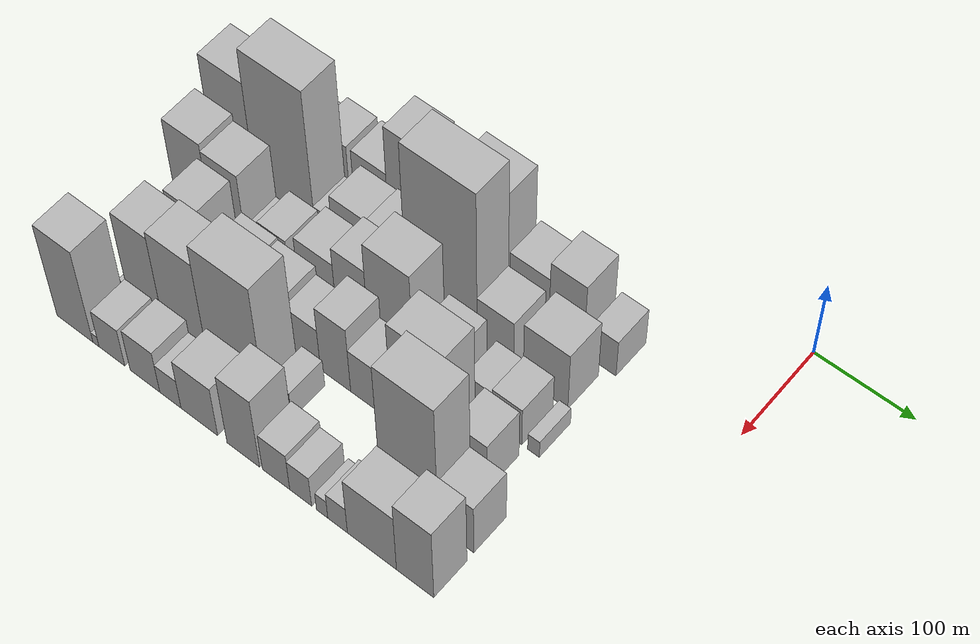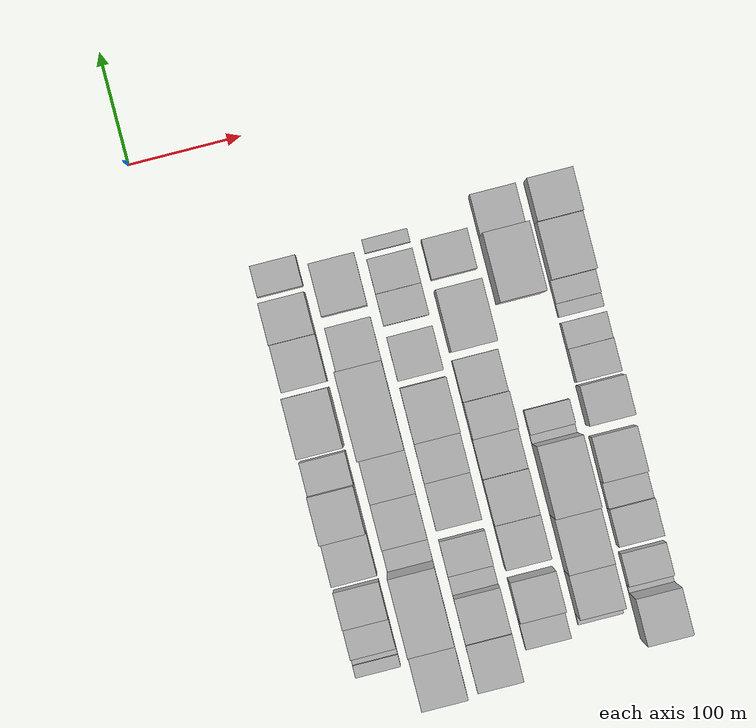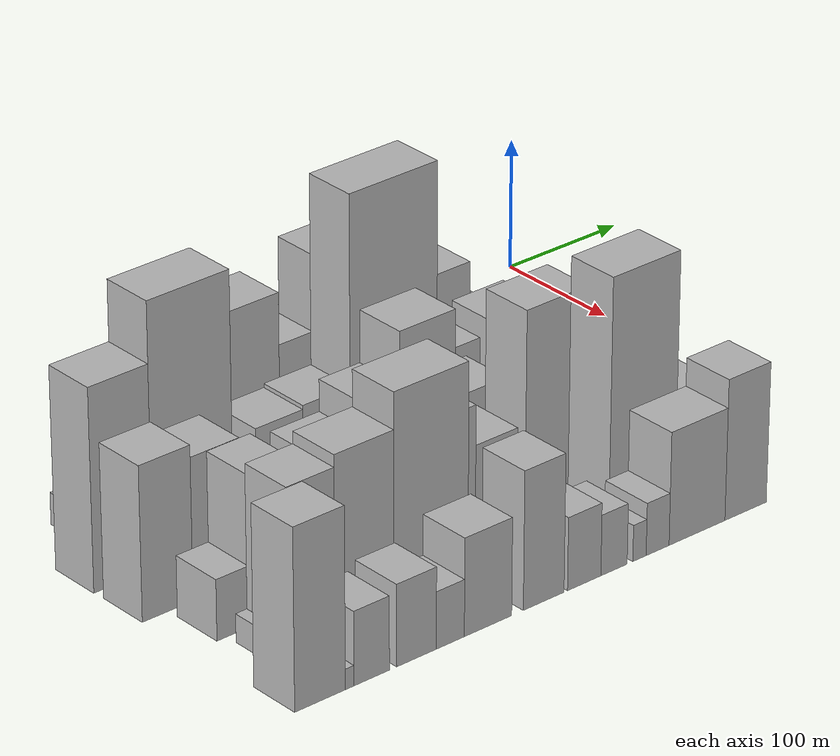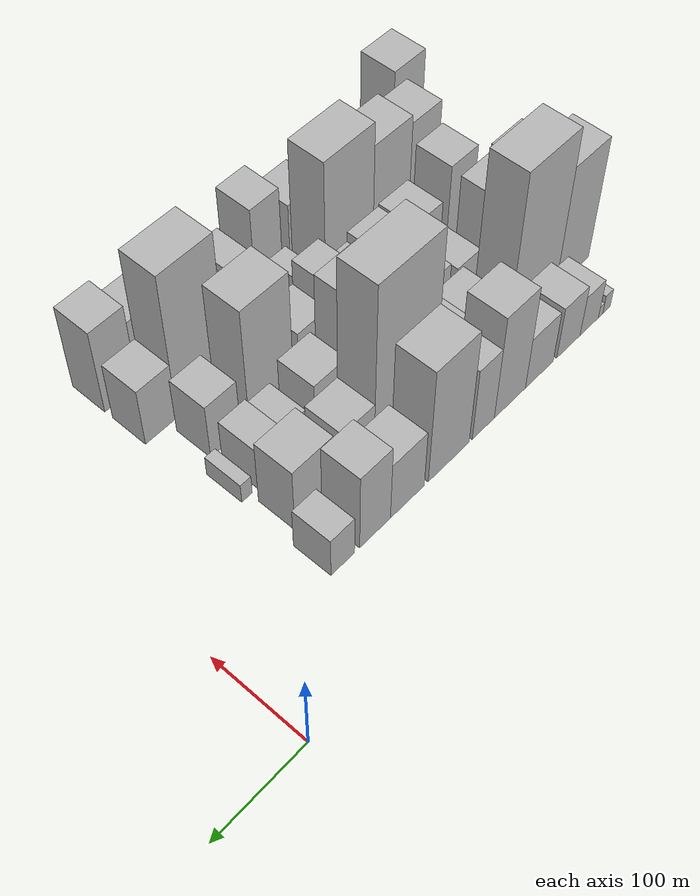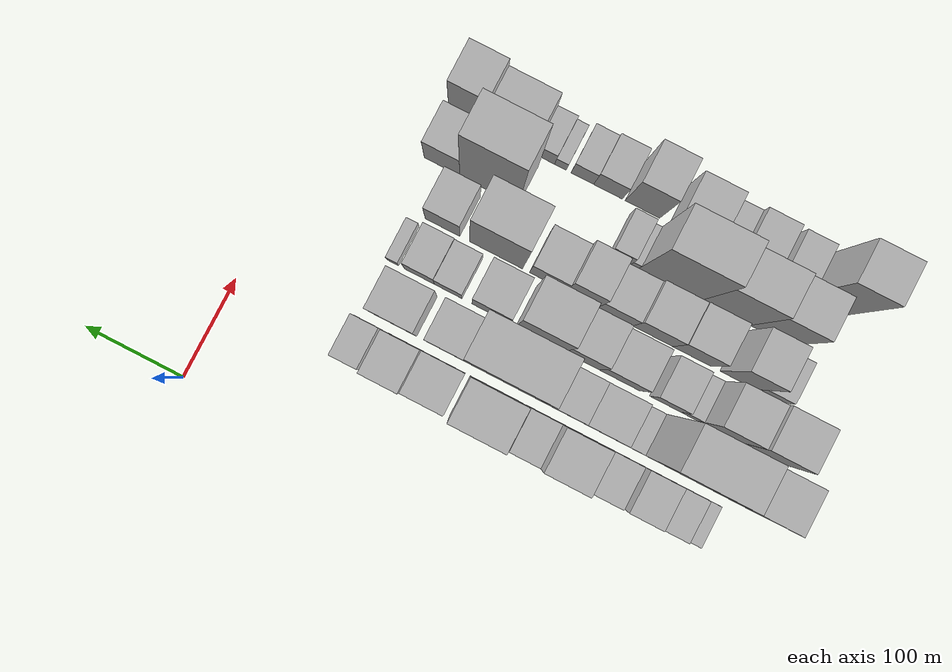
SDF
<sdf version="1.6">
 <world name="default">
  <model name="building_11">
   <static>1</static>
   <pose>100.0000 -469.0723 0 0.000000 0.000000 0.000000</pose>
   <link name="link">
    <pose>0 0 12.00 0 0 0</pose>
    <collision name="collision"><geometry><box><size>40.0000 10.9267 24.0000</size></box></geometry></collision>
    <visual name="visual">
     <cast_shadows>0</cast_shadows>
     <geometry><box><size>40.0000 10.9267 24.0000</size></box></geometry>
     <material>
      <script>
       <uri>model://HANNAS_wall/materials/scripts</uri>
       <uri>model://HANNAS_wall/materials/textures</uri>
       <name>vrc/HANNAS_wall</name>
      </script>
     </material>
    </visual>
   </link>
  </model>
  <model name="building_12">
   <static>1</static>
   <pose>100.0000 -460.4415 0 0.000000 0.000000 0.000000</pose>
   <link name="link">
    <pose>0 0 7.50 0 0 0</pose>
    <collision name="collision"><geometry><box><size>40.0000 6.3347 15.0000</size></box></geometry></collision>
    <visual name="visual">
     <cast_shadows>0</cast_shadows>
     <geometry><box><size>40.0000 6.3347 15.0000</size></box></geometry>
     <material>
      <script>
       <uri>model://HANNAS_wall/materials/scripts</uri>
       <uri>model://HANNAS_wall/materials/textures</uri>
       <name>vrc/HANNAS_wall</name>
      </script>
     </material>
    </visual>
   </link>
  </model>
  <model name="building_13">
   <static>1</static>
   <pose>100.0000 -443.9458 0 0.000000 0.000000 0.000000</pose>
   <link name="link">
    <pose>0 0 25.50 0 0 0</pose>
    <collision name="collision"><geometry><box><size>40.0000 26.6568 51.0000</size></box></geometry></collision>
    <visual name="visual">
     <cast_shadows>0</cast_shadows>
     <geometry><box><size>40.0000 26.6568 51.0000</size></box></geometry>
     <material>
      <script>
       <uri>model://HANNAS_wall/materials/scripts</uri>
       <uri>model://HANNAS_wall/materials/textures</uri>
       <name>vrc/HANNAS_wall</name>
      </script>
     </material>
    </visual>
   </link>
  </model>
  <model name="building_14">
   <static>1</static>
   <pose>100.0000 -414.1165 0 0.000000 0.000000 0.000000</pose>
   <link name="link">
    <pose>0 0 33.00 0 0 0</pose>
    <collision name="collision"><geometry><box><size>40.0000 33.0019 66.0000</size></box></geometry></collision>
    <visual name="visual">
     <cast_shadows>0</cast_shadows>
     <geometry><box><size>40.0000 33.0019 66.0000</size></box></geometry>
     <material>
      <script>
       <uri>model://HANNAS_wall/materials/scripts</uri>
       <uri>model://HANNAS_wall/materials/textures</uri>
       <name>vrc/HANNAS_wall</name>
      </script>
     </material>
    </visual>
   </link>
  </model>
  <model name="building_15">
   <static>1</static>
   <pose>100.0000 -373.3986 0 0.000000 0.000000 0.000000</pose>
   <link name="link">
    <pose>0 0 33.00 0 0 0</pose>
    <collision name="collision"><geometry><box><size>40.0000 38.4339 66.0000</size></box></geometry></collision>
    <visual name="visual">
     <cast_shadows>0</cast_shadows>
     <geometry><box><size>40.0000 38.4339 66.0000</size></box></geometry>
     <material>
      <script>
       <uri>model://HANNAS_wall/materials/scripts</uri>
       <uri>model://HANNAS_wall/materials/textures</uri>
       <name>vrc/HANNAS_wall</name>
      </script>
     </material>
    </visual>
   </link>
  </model>
  <model name="building_16">
   <static>1</static>
   <pose>100.0000 -333.3017 0 0.000000 0.000000 0.000000</pose>
   <link name="link">
    <pose>0 0 66.00 0 0 0</pose>
    <collision name="collision"><geometry><box><size>40.0000 41.7599 132.0000</size></box></geometry></collision>
    <visual name="visual">
     <cast_shadows>0</cast_shadows>
     <geometry><box><size>40.0000 41.7599 132.0000</size></box></geometry>
     <material>
      <script>
       <uri>model://HANNAS_wall/materials/scripts</uri>
       <uri>model://HANNAS_wall/materials/textures</uri>
       <name>vrc/HANNAS_wall</name>
      </script>
     </material>
    </visual>
   </link>
  </model>
  <model name="building_17">
   <static>1</static>
   <pose>100.0000 -297.9540 0 0.000000 0.000000 0.000000</pose>
   <link name="link">
    <pose>0 0 46.50 0 0 0</pose>
    <collision name="collision"><geometry><box><size>40.0000 28.9357 93.0000</size></box></geometry></collision>
    <visual name="visual">
     <cast_shadows>0</cast_shadows>
     <geometry><box><size>40.0000 28.9357 93.0000</size></box></geometry>
     <material>
      <script>
       <uri>model://HANNAS_wall/materials/scripts</uri>
       <uri>model://HANNAS_wall/materials/textures</uri>
       <name>vrc/HANNAS_wall</name>
      </script>
     </material>
    </visual>
   </link>
  </model>
  <model name="building_18">
   <static>1</static>
   <pose>100.0000 -253.5364 0 0.000000 0.000000 0.000000</pose>
   <link name="link">
    <pose>0 0 73.50 0 0 0</pose>
    <collision name="collision"><geometry><box><size>40.0000 51.8995 147.0000</size></box></geometry></collision>
    <visual name="visual">
     <cast_shadows>0</cast_shadows>
     <geometry><box><size>40.0000 51.8995 147.0000</size></box></geometry>
     <material>
      <script>
       <uri>model://HANNAS_wall/materials/scripts</uri>
       <uri>model://HANNAS_wall/materials/textures</uri>
       <name>vrc/HANNAS_wall</name>
      </script>
     </material>
    </visual>
   </link>
  </model>
  <model name="building_19">
   <static>1</static>
   <pose>100.0000 -201.8967 0 0.000000 0.000000 0.000000</pose>
   <link name="link">
    <pose>0 0 37.50 0 0 0</pose>
    <collision name="collision"><geometry><box><size>40.0000 41.3797 75.0000</size></box></geometry></collision>
    <visual name="visual">
     <cast_shadows>0</cast_shadows>
     <geometry><box><size>40.0000 41.3797 75.0000</size></box></geometry>
     <material>
      <script>
       <uri>model://HANNAS_wall/materials/scripts</uri>
       <uri>model://HANNAS_wall/materials/textures</uri>
       <name>vrc/HANNAS_wall</name>
      </script>
     </material>
    </visual>
   </link>
  </model>
  <model name="building_20">
   <static>1</static>
   <pose>100.0000 -162.9581 0 0.000000 0.000000 0.000000</pose>
   <link name="link">
    <pose>0 0 49.50 0 0 0</pose>
    <collision name="collision"><geometry><box><size>40.0000 36.4976 99.0000</size></box></geometry></collision>
    <visual name="visual">
     <cast_shadows>0</cast_shadows>
     <geometry><box><size>40.0000 36.4976 99.0000</size></box></geometry>
     <material>
      <script>
       <uri>model://HANNAS_wall/materials/scripts</uri>
       <uri>model://HANNAS_wall/materials/textures</uri>
       <name>vrc/HANNAS_wall</name>
      </script>
     </material>
    </visual>
   </link>
  </model>
  <model name="building_21">
   <static>1</static>
   <pose>100.0000 -125.1048 0 0.000000 0.000000 0.000000</pose>
   <link name="link">
    <pose>0 0 25.50 0 0 0</pose>
    <collision name="collision"><geometry><box><size>40.0000 27.2089 51.0000</size></box></geometry></collision>
    <visual name="visual">
     <cast_shadows>0</cast_shadows>
     <geometry><box><size>40.0000 27.2089 51.0000</size></box></geometry>
     <material>
      <script>
       <uri>model://HANNAS_wall/materials/scripts</uri>
       <uri>model://HANNAS_wall/materials/textures</uri>
       <name>vrc/HANNAS_wall</name>
      </script>
     </material>
    </visual>
   </link>
  </model>
  <model name="building_56">
   <static>1</static>
   <pose>149.0000 -484.1078 0 0.000000 0.000000 0.000000</pose>
   <link name="link">
    <pose>0 0 75.00 0 0 0</pose>
    <collision name="collision"><geometry><box><size>40.0000 48.3169 150.0000</size></box></geometry></collision>
    <visual name="visual">
     <cast_shadows>0</cast_shadows>
     <geometry><box><size>40.0000 48.3169 150.0000</size></box></geometry>
     <material>
      <script>
       <uri>model://HANNAS_wall/materials/scripts</uri>
       <uri>model://HANNAS_wall/materials/textures</uri>
       <name>vrc/HANNAS_wall</name>
      </script>
     </material>
    </visual>
   </link>
  </model>
  <model name="building_57">
   <static>1</static>
   <pose>149.0000 -426.3422 0 0.000000 0.000000 0.000000</pose>
   <link name="link">
    <pose>0 0 97.50 0 0 0</pose>
    <collision name="collision"><geometry><box><size>40.0000 67.2142 195.0000</size></box></geometry></collision>
    <visual name="visual">
     <cast_shadows>0</cast_shadows>
     <geometry><box><size>40.0000 67.2142 195.0000</size></box></geometry>
     <material>
      <script>
       <uri>model://HANNAS_wall/materials/scripts</uri>
       <uri>model://HANNAS_wall/materials/textures</uri>
       <name>vrc/HANNAS_wall</name>
      </script>
     </material>
    </visual>
   </link>
  </model>
  <model name="building_58">
   <static>1</static>
   <pose>149.0000 -382.9009 0 0.000000 0.000000 0.000000</pose>
   <link name="link">
    <pose>0 0 19.50 0 0 0</pose>
    <collision name="collision"><geometry><box><size>40.0000 19.6684 39.0000</size></box></geometry></collision>
    <visual name="visual">
     <cast_shadows>0</cast_shadows>
     <geometry><box><size>40.0000 19.6684 39.0000</size></box></geometry>
     <material>
      <script>
       <uri>model://HANNAS_wall/materials/scripts</uri>
       <uri>model://HANNAS_wall/materials/textures</uri>
       <name>vrc/HANNAS_wall</name>
      </script>
     </material>
    </visual>
   </link>
  </model>
  <model name="building_59">
   <static>1</static>
   <pose>149.0000 -353.0144 0 0.000000 0.000000 0.000000</pose>
   <link name="link">
    <pose>0 0 36.00 0 0 0</pose>
    <collision name="collision"><geometry><box><size>40.0000 40.1046 72.0000</size></box></geometry></collision>
    <visual name="visual">
     <cast_shadows>0</cast_shadows>
     <geometry><box><size>40.0000 40.1046 72.0000</size></box></geometry>
     <material>
      <script>
       <uri>model://HANNAS_wall/materials/scripts</uri>
       <uri>model://HANNAS_wall/materials/textures</uri>
       <name>vrc/HANNAS_wall</name>
      </script>
     </material>
    </visual>
   </link>
  </model>
  <model name="building_60">
   <static>1</static>
   <pose>149.0000 -312.7561 0 0.000000 0.000000 0.000000</pose>
   <link name="link">
    <pose>0 0 37.50 0 0 0</pose>
    <collision name="collision"><geometry><box><size>40.0000 40.4119 75.0000</size></box></geometry></collision>
    <visual name="visual">
     <cast_shadows>0</cast_shadows>
     <geometry><box><size>40.0000 40.4119 75.0000</size></box></geometry>
     <material>
      <script>
       <uri>model://HANNAS_wall/materials/scripts</uri>
       <uri>model://HANNAS_wall/materials/textures</uri>
       <name>vrc/HANNAS_wall</name>
      </script>
     </material>
    </visual>
   </link>
  </model>
  <model name="building_61">
   <static>1</static>
   <pose>149.0000 -254.6634 0 0.000000 0.000000 0.000000</pose>
   <link name="link">
    <pose>0 0 108.00 0 0 0</pose>
    <collision name="collision"><geometry><box><size>40.0000 75.7735 216.0000</size></box></geometry></collision>
    <visual name="visual">
     <cast_shadows>0</cast_shadows>
     <geometry><box><size>40.0000 75.7735 216.0000</size></box></geometry>
     <material>
      <script>
       <uri>model://HANNAS_wall/materials/scripts</uri>
       <uri>model://HANNAS_wall/materials/textures</uri>
       <name>vrc/HANNAS_wall</name>
      </script>
     </material>
    </visual>
   </link>
  </model>
  <model name="building_62">
   <static>1</static>
   <pose>149.0000 -197.6949 0 0.000000 0.000000 0.000000</pose>
   <link name="link">
    <pose>0 0 36.00 0 0 0</pose>
    <collision name="collision"><geometry><box><size>40.0000 38.1637 72.0000</size></box></geometry></collision>
    <visual name="visual">
     <cast_shadows>0</cast_shadows>
     <geometry><box><size>40.0000 38.1637 72.0000</size></box></geometry>
     <material>
      <script>
       <uri>model://HANNAS_wall/materials/scripts</uri>
       <uri>model://HANNAS_wall/materials/textures</uri>
       <name>vrc/HANNAS_wall</name>
      </script>
     </material>
    </visual>
   </link>
  </model>
  <model name="building_63">
   <static>1</static>
   <pose>149.0000 -145.5985 0 0.000000 0.000000 0.000000</pose>
   <link name="link">
    <pose>0 0 40.50 0 0 0</pose>
    <collision name="collision"><geometry><box><size>40.0000 46.0290 81.0000</size></box></geometry></collision>
    <visual name="visual">
     <cast_shadows>0</cast_shadows>
     <geometry><box><size>40.0000 46.0290 81.0000</size></box></geometry>
     <material>
      <script>
       <uri>model://HANNAS_wall/materials/scripts</uri>
       <uri>model://HANNAS_wall/materials/textures</uri>
       <name>vrc/HANNAS_wall</name>
      </script>
     </material>
    </visual>
   </link>
  </model>
  <model name="building_101">
   <static>1</static>
   <pose>198.0000 -486.6986 0 0.000000 0.000000 0.000000</pose>
   <link name="link">
    <pose>0 0 57.00 0 0 0</pose>
    <collision name="collision"><geometry><box><size>40.0000 41.4013 114.0000</size></box></geometry></collision>
    <visual name="visual">
     <cast_shadows>0</cast_shadows>
     <geometry><box><size>40.0000 41.4013 114.0000</size></box></geometry>
     <material>
      <script>
       <uri>model://HANNAS_wall/materials/scripts</uri>
       <uri>model://HANNAS_wall/materials/textures</uri>
       <name>vrc/HANNAS_wall</name>
      </script>
     </material>
    </visual>
   </link>
  </model>
  <model name="building_102">
   <static>1</static>
   <pose>198.0000 -446.1177 0 0.000000 0.000000 0.000000</pose>
   <link name="link">
    <pose>0 0 52.50 0 0 0</pose>
    <collision name="collision"><geometry><box><size>40.0000 39.7604 105.0000</size></box></geometry></collision>
    <visual name="visual">
     <cast_shadows>0</cast_shadows>
     <geometry><box><size>40.0000 39.7604 105.0000</size></box></geometry>
     <material>
      <script>
       <uri>model://HANNAS_wall/materials/scripts</uri>
       <uri>model://HANNAS_wall/materials/textures</uri>
       <name>vrc/HANNAS_wall</name>
      </script>
     </material>
    </visual>
   </link>
  </model>
  <model name="building_103">
   <static>1</static>
   <pose>198.0000 -417.6878 0 0.000000 0.000000 0.000000</pose>
   <link name="link">
    <pose>0 0 16.50 0 0 0</pose>
    <collision name="collision"><geometry><box><size>40.0000 17.0996 33.0000</size></box></geometry></collision>
    <visual name="visual">
     <cast_shadows>0</cast_shadows>
     <geometry><box><size>40.0000 17.0996 33.0000</size></box></geometry>
     <material>
      <script>
       <uri>model://HANNAS_wall/materials/scripts</uri>
       <uri>model://HANNAS_wall/materials/textures</uri>
       <name>vrc/HANNAS_wall</name>
      </script>
     </material>
    </visual>
   </link>
  </model>
  <model name="building_104">
   <static>1</static>
   <pose>198.0000 -393.6703 0 0.000000 0.000000 0.000000</pose>
   <link name="link">
    <pose>0 0 28.50 0 0 0</pose>
    <collision name="collision"><geometry><box><size>40.0000 30.9355 57.0000</size></box></geometry></collision>
    <visual name="visual">
     <cast_shadows>0</cast_shadows>
     <geometry><box><size>40.0000 30.9355 57.0000</size></box></geometry>
     <material>
      <script>
       <uri>model://HANNAS_wall/materials/scripts</uri>
       <uri>model://HANNAS_wall/materials/textures</uri>
       <name>vrc/HANNAS_wall</name>
      </script>
     </material>
    </visual>
   </link>
  </model>
  <model name="building_105">
   <static>1</static>
   <pose>198.0000 -347.3760 0 0.000000 0.000000 0.000000</pose>
   <link name="link">
    <pose>0 0 36.00 0 0 0</pose>
    <collision name="collision"><geometry><box><size>40.0000 41.6529 72.0000</size></box></geometry></collision>
    <visual name="visual">
     <cast_shadows>0</cast_shadows>
     <geometry><box><size>40.0000 41.6529 72.0000</size></box></geometry>
     <material>
      <script>
       <uri>model://HANNAS_wall/materials/scripts</uri>
       <uri>model://HANNAS_wall/materials/textures</uri>
       <name>vrc/HANNAS_wall</name>
      </script>
     </material>
    </visual>
   </link>
  </model>
  <model name="building_106">
   <static>1</static>
   <pose>198.0000 -309.0559 0 0.000000 0.000000 0.000000</pose>
   <link name="link">
    <pose>0 0 48.00 0 0 0</pose>
    <collision name="collision"><geometry><box><size>40.0000 34.9874 96.0000</size></box></geometry></collision>
    <visual name="visual">
     <cast_shadows>0</cast_shadows>
     <geometry><box><size>40.0000 34.9874 96.0000</size></box></geometry>
     <material>
      <script>
       <uri>model://HANNAS_wall/materials/scripts</uri>
       <uri>model://HANNAS_wall/materials/textures</uri>
       <name>vrc/HANNAS_wall</name>
      </script>
     </material>
    </visual>
   </link>
  </model>
  <model name="building_107">
   <static>1</static>
   <pose>198.0000 -267.5421 0 0.000000 0.000000 0.000000</pose>
   <link name="link">
    <pose>0 0 67.50 0 0 0</pose>
    <collision name="collision"><geometry><box><size>40.0000 48.0401 135.0000</size></box></geometry></collision>
    <visual name="visual">
     <cast_shadows>0</cast_shadows>
     <geometry><box><size>40.0000 48.0401 135.0000</size></box></geometry>
     <material>
      <script>
       <uri>model://HANNAS_wall/materials/scripts</uri>
       <uri>model://HANNAS_wall/materials/textures</uri>
       <name>vrc/HANNAS_wall</name>
      </script>
     </material>
    </visual>
   </link>
  </model>
  <model name="building_108">
   <static>1</static>
   <pose>198.0000 -218.2812 0 0.000000 0.000000 0.000000</pose>
   <link name="link">
    <pose>0 0 34.50 0 0 0</pose>
    <collision name="collision"><geometry><box><size>40.0000 38.4817 69.0000</size></box></geometry></collision>
    <visual name="visual">
     <cast_shadows>0</cast_shadows>
     <geometry><box><size>40.0000 38.4817 69.0000</size></box></geometry>
     <material>
      <script>
       <uri>model://HANNAS_wall/materials/scripts</uri>
       <uri>model://HANNAS_wall/materials/textures</uri>
       <name>vrc/HANNAS_wall</name>
      </script>
     </material>
    </visual>
   </link>
  </model>
  <model name="building_109">
   <static>1</static>
   <pose>198.0000 -175.1202 0 0.000000 0.000000 0.000000</pose>
   <link name="link">
    <pose>0 0 24.00 0 0 0</pose>
    <collision name="collision"><geometry><box><size>40.0000 27.8404 48.0000</size></box></geometry></collision>
    <visual name="visual">
     <cast_shadows>0</cast_shadows>
     <geometry><box><size>40.0000 27.8404 48.0000</size></box></geometry>
     <material>
      <script>
       <uri>model://HANNAS_wall/materials/scripts</uri>
       <uri>model://HANNAS_wall/materials/textures</uri>
       <name>vrc/HANNAS_wall</name>
      </script>
     </material>
    </visual>
   </link>
  </model>
  <model name="building_110">
   <static>1</static>
   <pose>198.0000 -145.9405 0 0.000000 0.000000 0.000000</pose>
   <link name="link">
    <pose>0 0 27.00 0 0 0</pose>
    <collision name="collision"><geometry><box><size>40.0000 30.5190 54.0000</size></box></geometry></collision>
    <visual name="visual">
     <cast_shadows>0</cast_shadows>
     <geometry><box><size>40.0000 30.5190 54.0000</size></box></geometry>
     <material>
      <script>
       <uri>model://HANNAS_wall/materials/scripts</uri>
       <uri>model://HANNAS_wall/materials/textures</uri>
       <name>vrc/HANNAS_wall</name>
      </script>
     </material>
    </visual>
   </link>
  </model>
  <model name="building_111">
   <static>1</static>
   <pose>198.0000 -118.7051 0 0.000000 0.000000 0.000000</pose>
   <link name="link">
    <pose>0 0 12.00 0 0 0</pose>
    <collision name="collision"><geometry><box><size>40.0000 11.9518 24.0000</size></box></geometry></collision>
    <visual name="visual">
     <cast_shadows>0</cast_shadows>
     <geometry><box><size>40.0000 11.9518 24.0000</size></box></geometry>
     <material>
      <script>
       <uri>model://HANNAS_wall/materials/scripts</uri>
       <uri>model://HANNAS_wall/materials/textures</uri>
       <name>vrc/HANNAS_wall</name>
      </script>
     </material>
    </visual>
   </link>
  </model>
  <model name="building_155">
   <static>1</static>
   <pose>247.0000 -472.9359 0 0.000000 0.000000 0.000000</pose>
   <link name="link">
    <pose>0 0 22.50 0 0 0</pose>
    <collision name="collision"><geometry><box><size>40.0000 26.2945 45.0000</size></box></geometry></collision>
    <visual name="visual">
     <cast_shadows>0</cast_shadows>
     <geometry><box><size>40.0000 26.2945 45.0000</size></box></geometry>
     <material>
      <script>
       <uri>model://HANNAS_wall/materials/scripts</uri>
       <uri>model://HANNAS_wall/materials/textures</uri>
       <name>vrc/HANNAS_wall</name>
      </script>
     </material>
    </visual>
   </link>
  </model>
  <model name="building_156">
   <static>1</static>
   <pose>247.0000 -442.0676 0 0.000000 0.000000 0.000000</pose>
   <link name="link">
    <pose>0 0 55.50 0 0 0</pose>
    <collision name="collision"><geometry><box><size>40.0000 35.4422 111.0000</size></box></geometry></collision>
    <visual name="visual">
     <cast_shadows>0</cast_shadows>
     <geometry><box><size>40.0000 35.4422 111.0000</size></box></geometry>
     <material>
      <script>
       <uri>model://HANNAS_wall/materials/scripts</uri>
       <uri>model://HANNAS_wall/materials/textures</uri>
       <name>vrc/HANNAS_wall</name>
      </script>
     </material>
    </visual>
   </link>
  </model>
  <model name="building_157">
   <static>1</static>
   <pose>247.0000 -395.9526 0 0.000000 0.000000 0.000000</pose>
   <link name="link">
    <pose>0 0 37.50 0 0 0</pose>
    <collision name="collision"><geometry><box><size>40.0000 38.7877 75.0000</size></box></geometry></collision>
    <visual name="visual">
     <cast_shadows>0</cast_shadows>
     <geometry><box><size>40.0000 38.7877 75.0000</size></box></geometry>
     <material>
      <script>
       <uri>model://HANNAS_wall/materials/scripts</uri>
       <uri>model://HANNAS_wall/materials/textures</uri>
       <name>vrc/HANNAS_wall</name>
      </script>
     </material>
    </visual>
   </link>
  </model>
  <model name="building_158">
   <static>1</static>
   <pose>247.0000 -356.4109 0 0.000000 0.000000 0.000000</pose>
   <link name="link">
    <pose>0 0 36.00 0 0 0</pose>
    <collision name="collision"><geometry><box><size>40.0000 40.2956 72.0000</size></box></geometry></collision>
    <visual name="visual">
     <cast_shadows>0</cast_shadows>
     <geometry><box><size>40.0000 40.2956 72.0000</size></box></geometry>
     <material>
      <script>
       <uri>model://HANNAS_wall/materials/scripts</uri>
       <uri>model://HANNAS_wall/materials/textures</uri>
       <name>vrc/HANNAS_wall</name>
      </script>
     </material>
    </visual>
   </link>
  </model>
  <model name="building_159">
   <static>1</static>
   <pose>247.0000 -318.5739 0 0.000000 0.000000 0.000000</pose>
   <link name="link">
    <pose>0 0 30.00 0 0 0</pose>
    <collision name="collision"><geometry><box><size>40.0000 35.3784 60.0000</size></box></geometry></collision>
    <visual name="visual">
     <cast_shadows>0</cast_shadows>
     <geometry><box><size>40.0000 35.3784 60.0000</size></box></geometry>
     <material>
      <script>
       <uri>model://HANNAS_wall/materials/scripts</uri>
       <uri>model://HANNAS_wall/materials/textures</uri>
       <name>vrc/HANNAS_wall</name>
      </script>
     </material>
    </visual>
   </link>
  </model>
  <model name="building_160">
   <static>1</static>
   <pose>247.0000 -284.7083 0 0.000000 0.000000 0.000000</pose>
   <link name="link">
    <pose>0 0 46.50 0 0 0</pose>
    <collision name="collision"><geometry><box><size>40.0000 32.3528 93.0000</size></box></geometry></collision>
    <visual name="visual">
     <cast_shadows>0</cast_shadows>
     <geometry><box><size>40.0000 32.3528 93.0000</size></box></geometry>
     <material>
      <script>
       <uri>model://HANNAS_wall/materials/scripts</uri>
       <uri>model://HANNAS_wall/materials/textures</uri>
       <name>vrc/HANNAS_wall</name>
      </script>
     </material>
    </visual>
   </link>
  </model>
  <model name="building_161">
   <static>1</static>
   <pose>247.0000 -250.2588 0 0.000000 0.000000 0.000000</pose>
   <link name="link">
    <pose>0 0 31.50 0 0 0</pose>
    <collision name="collision"><geometry><box><size>40.0000 36.5462 63.0000</size></box></geometry></collision>
    <visual name="visual">
     <cast_shadows>0</cast_shadows>
     <geometry><box><size>40.0000 36.5462 63.0000</size></box></geometry>
     <material>
      <script>
       <uri>model://HANNAS_wall/materials/scripts</uri>
       <uri>model://HANNAS_wall/materials/textures</uri>
       <name>vrc/HANNAS_wall</name>
      </script>
     </material>
    </visual>
   </link>
  </model>
  <model name="building_162">
   <static>1</static>
   <pose>247.0000 -198.1418 0 0.000000 0.000000 0.000000</pose>
   <link name="link">
    <pose>0 0 73.50 0 0 0</pose>
    <collision name="collision"><geometry><box><size>40.0000 53.6879 147.0000</size></box></geometry></collision>
    <visual name="visual">
     <cast_shadows>0</cast_shadows>
     <geometry><box><size>40.0000 53.6879 147.0000</size></box></geometry>
     <material>
      <script>
       <uri>model://HANNAS_wall/materials/scripts</uri>
       <uri>model://HANNAS_wall/materials/textures</uri>
       <name>vrc/HANNAS_wall</name>
      </script>
     </material>
    </visual>
   </link>
  </model>
  <model name="building_163">
   <static>1</static>
   <pose>247.0000 -143.7918 0 0.000000 0.000000 0.000000</pose>
   <link name="link">
    <pose>0 0 34.50 0 0 0</pose>
    <collision name="collision"><geometry><box><size>40.0000 35.0120 69.0000</size></box></geometry></collision>
    <visual name="visual">
     <cast_shadows>0</cast_shadows>
     <geometry><box><size>40.0000 35.0120 69.0000</size></box></geometry>
     <material>
      <script>
       <uri>model://HANNAS_wall/materials/scripts</uri>
       <uri>model://HANNAS_wall/materials/textures</uri>
       <name>vrc/HANNAS_wall</name>
      </script>
     </material>
    </visual>
   </link>
  </model>
  <model name="building_211">
   <static>1</static>
   <pose>296.0000 -473.1839 0 0.000000 0.000000 0.000000</pose>
   <link name="link">
    <pose>0 0 10.50 0 0 0</pose>
    <collision name="collision"><geometry><box><size>40.0000 9.3238 21.0000</size></box></geometry></collision>
    <visual name="visual">
     <cast_shadows>0</cast_shadows>
     <geometry><box><size>40.0000 9.3238 21.0000</size></box></geometry>
     <material>
      <script>
       <uri>model://HANNAS_wall/materials/scripts</uri>
       <uri>model://HANNAS_wall/materials/textures</uri>
       <name>vrc/HANNAS_wall</name>
      </script>
     </material>
    </visual>
   </link>
  </model>
  <model name="building_212">
   <static>1</static>
   <pose>296.0000 -449.1002 0 0.000000 0.000000 0.000000</pose>
   <link name="link">
    <pose>0 0 63.00 0 0 0</pose>
    <collision name="collision"><geometry><box><size>40.0000 38.8437 126.0000</size></box></geometry></collision>
    <visual name="visual">
     <cast_shadows>0</cast_shadows>
     <geometry><box><size>40.0000 38.8437 126.0000</size></box></geometry>
     <material>
      <script>
       <uri>model://HANNAS_wall/materials/scripts</uri>
       <uri>model://HANNAS_wall/materials/textures</uri>
       <name>vrc/HANNAS_wall</name>
      </script>
     </material>
    </visual>
   </link>
  </model>
  <model name="building_213">
   <static>1</static>
   <pose>296.0000 -405.2013 0 0.000000 0.000000 0.000000</pose>
   <link name="link">
    <pose>0 0 67.50 0 0 0</pose>
    <collision name="collision"><geometry><box><size>40.0000 48.9539 135.0000</size></box></geometry></collision>
    <visual name="visual">
     <cast_shadows>0</cast_shadows>
     <geometry><box><size>40.0000 48.9539 135.0000</size></box></geometry>
     <material>
      <script>
       <uri>model://HANNAS_wall/materials/scripts</uri>
       <uri>model://HANNAS_wall/materials/textures</uri>
       <name>vrc/HANNAS_wall</name>
      </script>
     </material>
    </visual>
   </link>
  </model>
  <model name="building_214">
   <static>1</static>
   <pose>296.0000 -349.4158 0 0.000000 0.000000 0.000000</pose>
   <link name="link">
    <pose>0 0 81.00 0 0 0</pose>
    <collision name="collision"><geometry><box><size>40.0000 62.6172 162.0000</size></box></geometry></collision>
    <visual name="visual">
     <cast_shadows>0</cast_shadows>
     <geometry><box><size>40.0000 62.6172 162.0000</size></box></geometry>
     <material>
      <script>
       <uri>model://HANNAS_wall/materials/scripts</uri>
       <uri>model://HANNAS_wall/materials/textures</uri>
       <name>vrc/HANNAS_wall</name>
      </script>
     </material>
    </visual>
   </link>
  </model>
  <model name="building_215">
   <static>1</static>
   <pose>296.0000 -314.1206 0 0.000000 0.000000 0.000000</pose>
   <link name="link">
    <pose>0 0 9.00 0 0 0</pose>
    <collision name="collision"><geometry><box><size>40.0000 7.9731 18.0000</size></box></geometry></collision>
    <visual name="visual">
     <cast_shadows>0</cast_shadows>
     <geometry><box><size>40.0000 7.9731 18.0000</size></box></geometry>
     <material>
      <script>
       <uri>model://HANNAS_wall/materials/scripts</uri>
       <uri>model://HANNAS_wall/materials/textures</uri>
       <name>vrc/HANNAS_wall</name>
      </script>
     </material>
    </visual>
   </link>
  </model>
  <model name="building_216">
   <static>1</static>
   <pose>296.0000 -299.2634 0 0.000000 0.000000 0.000000</pose>
   <link name="link">
    <pose>0 0 19.50 0 0 0</pose>
    <collision name="collision"><geometry><box><size>40.0000 21.7412 39.0000</size></box></geometry></collision>
    <visual name="visual">
     <cast_shadows>0</cast_shadows>
     <geometry><box><size>40.0000 21.7412 39.0000</size></box></geometry>
     <material>
      <script>
       <uri>model://HANNAS_wall/materials/scripts</uri>
       <uri>model://HANNAS_wall/materials/textures</uri>
       <name>vrc/HANNAS_wall</name>
      </script>
     </material>
    </visual>
   </link>
  </model>
  <model name="building_217">
   <static>1</static>
   <pose>296.0000 -165.3825 0 0.000000 0.000000 0.000000</pose>
   <link name="link">
    <pose>0 0 90.00 0 0 0</pose>
    <collision name="collision"><geometry><box><size>40.0000 59.3402 180.0000</size></box></geometry></collision>
    <visual name="visual">
     <cast_shadows>0</cast_shadows>
     <geometry><box><size>40.0000 59.3402 180.0000</size></box></geometry>
     <material>
      <script>
       <uri>model://HANNAS_wall/materials/scripts</uri>
       <uri>model://HANNAS_wall/materials/textures</uri>
       <name>vrc/HANNAS_wall</name>
      </script>
     </material>
    </visual>
   </link>
  </model>
  <model name="building_218">
   <static>1</static>
   <pose>296.0000 -117.6052 0 0.000000 0.000000 0.000000</pose>
   <link name="link">
    <pose>0 0 36.00 0 0 0</pose>
    <collision name="collision"><geometry><box><size>40.0000 36.2142 72.0000</size></box></geometry></collision>
    <visual name="visual">
     <cast_shadows>0</cast_shadows>
     <geometry><box><size>40.0000 36.2142 72.0000</size></box></geometry>
     <material>
      <script>
       <uri>model://HANNAS_wall/materials/scripts</uri>
       <uri>model://HANNAS_wall/materials/textures</uri>
       <name>vrc/HANNAS_wall</name>
      </script>
     </material>
    </visual>
   </link>
  </model>
  <model name="building_259">
   <static>1</static>
   <pose>345.0000 -483.1170 0 0.000000 0.000000 0.000000</pose>
   <link name="link">
    <pose>0 0 66.00 0 0 0</pose>
    <collision name="collision"><geometry><box><size>40.0000 41.0709 132.0000</size></box></geometry></collision>
    <visual name="visual">
     <cast_shadows>0</cast_shadows>
     <geometry><box><size>40.0000 41.0709 132.0000</size></box></geometry>
     <material>
      <script>
       <uri>model://HANNAS_wall/materials/scripts</uri>
       <uri>model://HANNAS_wall/materials/textures</uri>
       <name>vrc/HANNAS_wall</name>
      </script>
     </material>
    </visual>
   </link>
  </model>
  <model name="building_260">
   <static>1</static>
   <pose>345.0000 -459.0892 0 0.000000 0.000000 0.000000</pose>
   <link name="link">
    <pose>0 0 7.50 0 0 0</pose>
    <collision name="collision"><geometry><box><size>40.0000 6.9847 15.0000</size></box></geometry></collision>
    <visual name="visual">
     <cast_shadows>0</cast_shadows>
     <geometry><box><size>40.0000 6.9847 15.0000</size></box></geometry>
     <material>
      <script>
       <uri>model://HANNAS_wall/materials/scripts</uri>
       <uri>model://HANNAS_wall/materials/textures</uri>
       <name>vrc/HANNAS_wall</name>
      </script>
     </material>
    </visual>
   </link>
  </model>
  <model name="building_261">
   <static>1</static>
   <pose>345.0000 -441.0487 0 0.000000 0.000000 0.000000</pose>
   <link name="link">
    <pose>0 0 27.00 0 0 0</pose>
    <collision name="collision"><geometry><box><size>40.0000 29.0962 54.0000</size></box></geometry></collision>
    <visual name="visual">
     <cast_shadows>0</cast_shadows>
     <geometry><box><size>40.0000 29.0962 54.0000</size></box></geometry>
     <material>
      <script>
       <uri>model://HANNAS_wall/materials/scripts</uri>
       <uri>model://HANNAS_wall/materials/textures</uri>
       <name>vrc/HANNAS_wall</name>
      </script>
     </material>
    </visual>
   </link>
  </model>
  <model name="building_262">
   <static>1</static>
   <pose>345.0000 -404.0106 0 0.000000 0.000000 0.000000</pose>
   <link name="link">
    <pose>0 0 30.00 0 0 0</pose>
    <collision name="collision"><geometry><box><size>40.0000 32.9801 60.0000</size></box></geometry></collision>
    <visual name="visual">
     <cast_shadows>0</cast_shadows>
     <geometry><box><size>40.0000 32.9801 60.0000</size></box></geometry>
     <material>
      <script>
       <uri>model://HANNAS_wall/materials/scripts</uri>
       <uri>model://HANNAS_wall/materials/textures</uri>
       <name>vrc/HANNAS_wall</name>
      </script>
     </material>
    </visual>
   </link>
  </model>
  <model name="building_263">
   <static>1</static>
   <pose>345.0000 -375.7990 0 0.000000 0.000000 0.000000</pose>
   <link name="link">
    <pose>0 0 21.00 0 0 0</pose>
    <collision name="collision"><geometry><box><size>40.0000 23.4431 42.0000</size></box></geometry></collision>
    <visual name="visual">
     <cast_shadows>0</cast_shadows>
     <geometry><box><size>40.0000 23.4431 42.0000</size></box></geometry>
     <material>
      <script>
       <uri>model://HANNAS_wall/materials/scripts</uri>
       <uri>model://HANNAS_wall/materials/textures</uri>
       <name>vrc/HANNAS_wall</name>
      </script>
     </material>
    </visual>
   </link>
  </model>
  <model name="building_264">
   <static>1</static>
   <pose>345.0000 -344.0571 0 0.000000 0.000000 0.000000</pose>
   <link name="link">
    <pose>0 0 36.00 0 0 0</pose>
    <collision name="collision"><geometry><box><size>40.0000 40.0409 72.0000</size></box></geometry></collision>
    <visual name="visual">
     <cast_shadows>0</cast_shadows>
     <geometry><box><size>40.0000 40.0409 72.0000</size></box></geometry>
     <material>
      <script>
       <uri>model://HANNAS_wall/materials/scripts</uri>
       <uri>model://HANNAS_wall/materials/textures</uri>
       <name>vrc/HANNAS_wall</name>
      </script>
     </material>
    </visual>
   </link>
  </model>
  <model name="building_265">
   <static>1</static>
   <pose>345.0000 -296.5436 0 0.000000 0.000000 0.000000</pose>
   <link name="link">
    <pose>0 0 51.00 0 0 0</pose>
    <collision name="collision"><geometry><box><size>40.0000 34.9859 102.0000</size></box></geometry></collision>
    <visual name="visual">
     <cast_shadows>0</cast_shadows>
     <geometry><box><size>40.0000 34.9859 102.0000</size></box></geometry>
     <material>
      <script>
       <uri>model://HANNAS_wall/materials/scripts</uri>
       <uri>model://HANNAS_wall/materials/textures</uri>
       <name>vrc/HANNAS_wall</name>
      </script>
     </material>
    </visual>
   </link>
  </model>
  <model name="building_266">
   <static>1</static>
   <pose>345.0000 -261.5350 0 0.000000 0.000000 0.000000</pose>
   <link name="link">
    <pose>0 0 27.00 0 0 0</pose>
    <collision name="collision"><geometry><box><size>40.0000 29.0314 54.0000</size></box></geometry></collision>
    <visual name="visual">
     <cast_shadows>0</cast_shadows>
     <geometry><box><size>40.0000 29.0314 54.0000</size></box></geometry>
     <material>
      <script>
       <uri>model://HANNAS_wall/materials/scripts</uri>
       <uri>model://HANNAS_wall/materials/textures</uri>
       <name>vrc/HANNAS_wall</name>
      </script>
     </material>
    </visual>
   </link>
  </model>
  <model name="building_267">
   <static>1</static>
   <pose>345.0000 -235.4873 0 0.000000 0.000000 0.000000</pose>
   <link name="link">
    <pose>0 0 22.50 0 0 0</pose>
    <collision name="collision"><geometry><box><size>40.0000 23.0639 45.0000</size></box></geometry></collision>
    <visual name="visual">
     <cast_shadows>0</cast_shadows>
     <geometry><box><size>40.0000 23.0639 45.0000</size></box></geometry>
     <material>
      <script>
       <uri>model://HANNAS_wall/materials/scripts</uri>
       <uri>model://HANNAS_wall/materials/textures</uri>
       <name>vrc/HANNAS_wall</name>
      </script>
     </material>
    </visual>
   </link>
  </model>
  <model name="building_268">
   <static>1</static>
   <pose>345.0000 -213.0593 0 0.000000 0.000000 0.000000</pose>
   <link name="link">
    <pose>0 0 13.50 0 0 0</pose>
    <collision name="collision"><geometry><box><size>40.0000 11.7921 27.0000</size></box></geometry></collision>
    <visual name="visual">
     <cast_shadows>0</cast_shadows>
     <geometry><box><size>40.0000 11.7921 27.0000</size></box></geometry>
     <material>
      <script>
       <uri>model://HANNAS_wall/materials/scripts</uri>
       <uri>model://HANNAS_wall/materials/textures</uri>
       <name>vrc/HANNAS_wall</name>
      </script>
     </material>
    </visual>
   </link>
  </model>
  <model name="building_269">
   <static>1</static>
   <pose>345.0000 -196.9899 0 0.000000 0.000000 0.000000</pose>
   <link name="link">
    <pose>0 0 19.50 0 0 0</pose>
    <collision name="collision"><geometry><box><size>40.0000 20.3467 39.0000</size></box></geometry></collision>
    <visual name="visual">
     <cast_shadows>0</cast_shadows>
     <geometry><box><size>40.0000 20.3467 39.0000</size></box></geometry>
     <material>
      <script>
       <uri>model://HANNAS_wall/materials/scripts</uri>
       <uri>model://HANNAS_wall/materials/textures</uri>
       <name>vrc/HANNAS_wall</name>
      </script>
     </material>
    </visual>
   </link>
  </model>
  <model name="building_270">
   <static>1</static>
   <pose>345.0000 -161.7326 0 0.000000 0.000000 0.000000</pose>
   <link name="link">
    <pose>0 0 42.00 0 0 0</pose>
    <collision name="collision"><geometry><box><size>40.0000 50.1679 84.0000</size></box></geometry></collision>
    <visual name="visual">
     <cast_shadows>0</cast_shadows>
     <geometry><box><size>40.0000 50.1679 84.0000</size></box></geometry>
     <material>
      <script>
       <uri>model://HANNAS_wall/materials/scripts</uri>
       <uri>model://HANNAS_wall/materials/textures</uri>
       <name>vrc/HANNAS_wall</name>
      </script>
     </material>
    </visual>
   </link>
  </model>
  <model name="building_271">
   <static>1</static>
   <pose>345.0000 -117.8366 0 0.000000 0.000000 0.000000</pose>
   <link name="link">
    <pose>0 0 52.50 0 0 0</pose>
    <collision name="collision"><geometry><box><size>40.0000 37.6241 105.0000</size></box></geometry></collision>
    <visual name="visual">
     <cast_shadows>0</cast_shadows>
     <geometry><box><size>40.0000 37.6241 105.0000</size></box></geometry>
     <material>
      <script>
       <uri>model://HANNAS_wall/materials/scripts</uri>
       <uri>model://HANNAS_wall/materials/textures</uri>
       <name>vrc/HANNAS_wall</name>
      </script>
     </material>
    </visual>
   </link>
  </model>
 </world>
</sdf>
